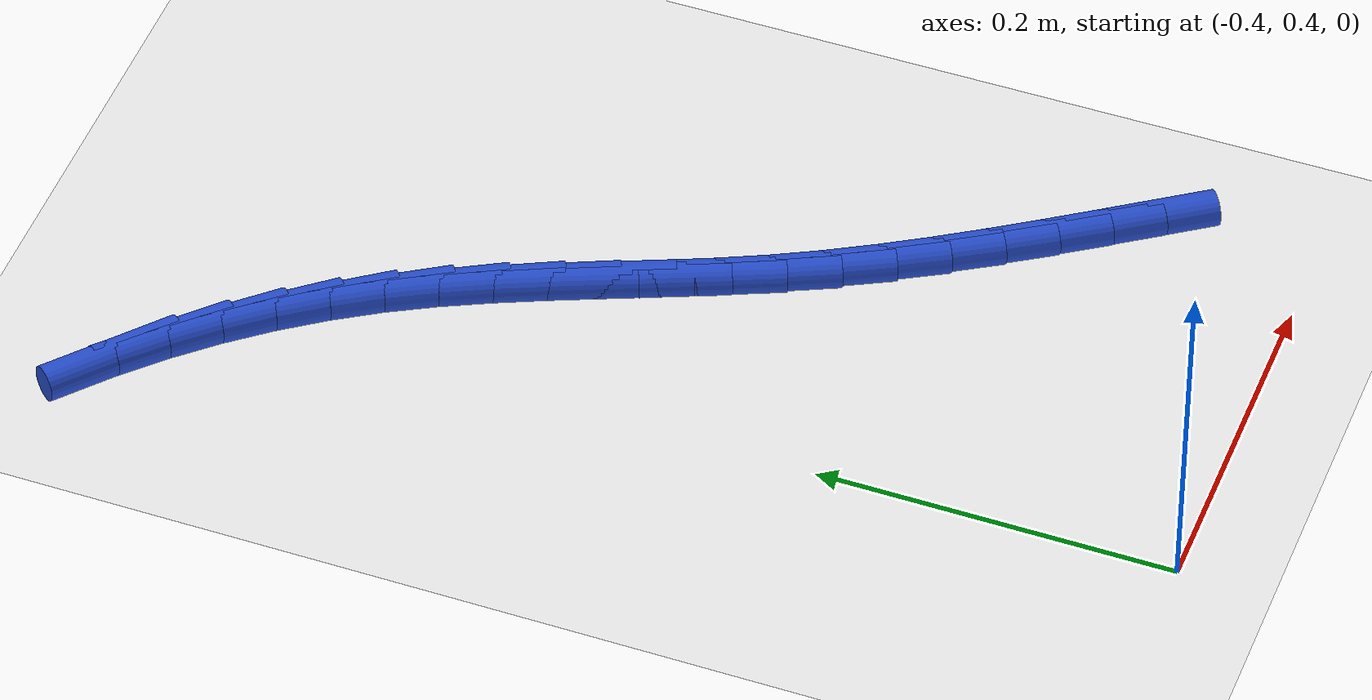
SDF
<sdf version="1.6">
 <world name="default">
  <model name="ground_plane">
   <static>1</static>
   <link name="link">
    <collision name="collision">
     <geometry><plane><normal>0 0 1</normal><size>100 100</size></plane></geometry>
     <surface><friction><ode><mu>100</mu><mu2>50</mu2></ode></friction></surface>
    </collision>
    <visual name="visual">
     <cast_shadows>0</cast_shadows>
     <geometry><plane><normal>0 0 1</normal><size>100 100</size></plane></geometry>
     <material>
      <script><uri>file://media/materials/scripts/gazebo.material</uri><name>Gazebo/WhiteGlow</name></script>
     </material>
    </visual>
   </link>
  </model>
  <model name="line">
   <link name="link_18">
    <pose>-0.167444877258756 0.49410528563416545 0.01 0 1.57 -0.9669008236131983</pose>
    <collision name="collision">
     <geometry><cylinder><radius>0.01</radius><length>0.08</length></cylinder></geometry>
    </collision>
    <visual name="visual">
     <material>
      <script><name>Gazebo/Blue</name><uri>file://media/materials/scripts/gazebo.material</uri></script>
     </material>
     <geometry><cylinder><radius>0.01</radius><length>0.08</length></cylinder></geometry>
    </visual>
   </link>
   <link name="link_19">
    <pose>-0.18450246756073044 0.5188310577345571 0.01 0 1.57 -0.9726863884717935</pose>
    <collision name="collision">
     <geometry><cylinder><radius>0.01</radius><length>0.08</length></cylinder></geometry>
    </collision>
    <visual name="visual">
     <material>
      <script><name>Gazebo/Blue</name><uri>file://media/materials/scripts/gazebo.material</uri></script>
     </material>
     <geometry><cylinder><radius>0.01</radius><length>0.08</length></cylinder></geometry>
    </visual>
   </link>
   <link name="link_20">
    <pose>-0.20141331807662105 0.5436501095480528 0.01 0 1.57 -0.984597183898682</pose>
    <collision name="collision">
     <geometry><cylinder><radius>0.01</radius><length>0.08</length></cylinder></geometry>
    </collision>
    <visual name="visual">
     <material>
      <script><name>Gazebo/Blue</name><uri>file://media/materials/scripts/gazebo.material</uri></script>
     </material>
     <geometry><cylinder><radius>0.01</radius><length>0.08</length></cylinder></geometry>
    </visual>
   </link>
   <link name="link_21">
    <pose>-0.21800440219573697 0.5686342440550504 0.01 0 1.57 -1.0026981416675862</pose>
    <collision name="collision">
     <geometry><cylinder><radius>0.01</radius><length>0.08</length></cylinder></geometry>
    </collision>
    <visual name="visual">
     <material>
      <script><name>Gazebo/Blue</name><uri>file://media/materials/scripts/gazebo.material</uri></script>
     </material>
     <geometry><cylinder><radius>0.01</radius><length>0.08</length></cylinder></geometry>
    </visual>
   </link>
   <link name="link_22">
    <pose>-0.23410269330738717 0.5938552642359478 0.01 0 1.57 -1.0270813841281645</pose>
    <collision name="collision">
     <geometry><cylinder><radius>0.01</radius><length>0.08</length></cylinder></geometry>
    </collision>
    <visual name="visual">
     <material>
      <script><name>Gazebo/Blue</name><uri>file://media/materials/scripts/gazebo.material</uri></script>
     </material>
     <geometry><cylinder><radius>0.01</radius><length>0.08</length></cylinder></geometry>
    </visual>
   </link>
   <link name="link_23">
    <pose>-0.24953516480088064 0.6193849730711432 0.01 0 1.57 -1.0578459639371918</pose>
    <collision name="collision">
     <geometry><cylinder><radius>0.01</radius><length>0.08</length></cylinder></geometry>
    </collision>
    <visual name="visual">
     <material>
      <script><name>Gazebo/Blue</name><uri>file://media/materials/scripts/gazebo.material</uri></script>
     </material>
     <geometry><cylinder><radius>0.01</radius><length>0.08</length></cylinder></geometry>
    </visual>
   </link>
   <link name="link_24">
    <pose>-0.2641287900655266 0.6452951735410347 0.01 0 1.57 -1.095064450970841</pose>
    <collision name="collision">
     <geometry><cylinder><radius>0.01</radius><length>0.08</length></cylinder></geometry>
    </collision>
    <visual name="visual">
     <material>
      <script><name>Gazebo/Blue</name><uri>file://media/materials/scripts/gazebo.material</uri></script>
     </material>
     <geometry><cylinder><radius>0.01</radius><length>0.08</length></cylinder></geometry>
    </visual>
   </link>
   <link name="link_25">
    <pose>-0.2777106649210383 0.6716576156773398 0.01 0 1.57 -1.1339365389686895</pose>
    <collision name="collision">
     <geometry><cylinder><radius>0.01</radius><length>0.08</length></cylinder></geometry>
    </collision>
    <visual name="visual">
     <material>
      <script><name>Gazebo/Blue</name><uri>file://media/materials/scripts/gazebo.material</uri></script>
     </material>
     <geometry><cylinder><radius>0.01</radius><length>0.08</length></cylinder></geometry>
    </visual>
   </link>
   <link name="link_26">
    <pose>-0.29023883915279275 0.6984874145633994 0.01 0 1.57 -1.1603927286373734</pose>
    <collision name="collision">
     <geometry><cylinder><radius>0.01</radius><length>0.08</length></cylinder></geometry>
    </collision>
    <visual name="visual">
     <material>
      <script><name>Gazebo/Blue</name><uri>file://media/materials/scripts/gazebo.material</uri></script>
     </material>
     <geometry><cylinder><radius>0.01</radius><length>0.08</length></cylinder></geometry>
    </visual>
   </link>
   <link name="link_27">
    <pose>-0.30205122987205557 0.7256354003272797 0.01 0 1.57 -1.1718510174751262</pose>
    <collision name="collision">
     <geometry><cylinder><radius>0.01</radius><length>0.08</length></cylinder></geometry>
    </collision>
    <visual name="visual">
     <material>
      <script><name>Gazebo/Blue</name><uri>file://media/materials/scripts/gazebo.material</uri></script>
     </material>
     <geometry><cylinder><radius>0.01</radius><length>0.08</length></cylinder></geometry>
    </visual>
   </link>
   <link name="link_28">
    <pose>-0.313554241404602 0.7529227837583837 0.01 0 1.57 -1.1683153209630228</pose>
    <collision name="collision">
     <geometry><cylinder><radius>0.01</radius><length>0.08</length></cylinder></geometry>
    </collision>
    <visual name="visual">
     <material>
      <script><name>Gazebo/Blue</name><uri>file://media/materials/scripts/gazebo.material</uri></script>
     </material>
     <geometry><cylinder><radius>0.01</radius><length>0.08</length></cylinder></geometry>
    </visual>
   </link>
   <link name="link_29">
    <pose>-0.32515427807620667 0.7801707756461143 0.01 0 1.57 -1.1497883213732725</pose>
    <collision name="collision">
     <geometry><cylinder><radius>0.01</radius><length>0.08</length></cylinder></geometry>
    </collision>
    <visual name="visual">
     <material>
      <script><name>Gazebo/Blue</name><uri>file://media/materials/scripts/gazebo.material</uri></script>
     </material>
     <geometry><cylinder><radius>0.01</radius><length>0.08</length></cylinder></geometry>
    </visual>
   </link>
   <link name="link_30">
    <pose>-0.3372577442126451 0.8072005867798756 0.01 0 1.57 -1.1162952735850844</pose>
    <collision name="collision">
     <geometry><cylinder><radius>0.01</radius><length>0.08</length></cylinder></geometry>
    </collision>
    <visual name="visual">
     <material>
      <script><name>Gazebo/Blue</name><uri>file://media/materials/scripts/gazebo.material</uri></script>
     </material>
     <geometry><cylinder><radius>0.01</radius><length>0.08</length></cylinder></geometry>
    </visual>
   </link>
   <link name="link_31">
    <pose>-0.35027104413969185 0.8338334279490695 0.01 0 1.57 -1.0680078343342836</pose>
    <collision name="collision">
     <geometry><cylinder><radius>0.01</radius><length>0.08</length></cylinder></geometry>
    </collision>
    <visual name="visual">
     <material>
      <script><name>Gazebo/Blue</name><uri>file://media/materials/scripts/gazebo.material</uri></script>
     </material>
     <geometry><cylinder><radius>0.01</radius><length>0.08</length></cylinder></geometry>
    </visual>
   </link>
   <link name="link_32">
    <pose>-0.3646005821831223 0.8598905099431002 0.01 0 1.57 -1.0080423370805933</pose>
    <collision name="collision">
     <geometry><cylinder><radius>0.01</radius><length>0.08</length></cylinder></geometry>
    </collision>
    <visual name="visual">
     <material>
      <script><name>Gazebo/Blue</name><uri>file://media/materials/scripts/gazebo.material</uri></script>
     </material>
     <geometry><cylinder><radius>0.01</radius><length>0.08</length></cylinder></geometry>
    </visual>
   </link>
   <link name="link_33">
    <pose>-0.38056796587997116 0.8852037142345754 0.01 0 1.57 -0.9471541938286397</pose>
    <collision name="collision">
     <geometry><cylinder><radius>0.01</radius><length>0.08</length></cylinder></geometry>
    </collision>
    <visual name="visual">
     <material>
      <script><name>Gazebo/Blue</name><uri>file://media/materials/scripts/gazebo.material</uri></script>
     </material>
     <geometry><cylinder><radius>0.01</radius><length>0.08</length></cylinder></geometry>
    </visual>
   </link>
   <link name="link_34">
    <pose>-0.3981536142375855 0.9096478568785027 0.01 0 1.57 -0.8875377673563339</pose>
    <collision name="collision">
     <geometry><cylinder><radius>0.01</radius><length>0.08</length></cylinder></geometry>
    </collision>
    <visual name="visual">
     <material>
      <script><name>Gazebo/Blue</name><uri>file://media/materials/scripts/gazebo.material</uri></script>
     </material>
     <geometry><cylinder><radius>0.01</radius><length>0.08</length></cylinder></geometry>
    </visual>
   </link>
   <link name="link_35">
    <pose>-0.417252145838474 0.9331085509089488 0.01 0 1.57 -0.828685149573534</pose>
    <collision name="collision">
     <geometry><cylinder><radius>0.01</radius><length>0.08</length></cylinder></geometry>
    </collision>
    <visual name="visual">
     <material>
      <script><name>Gazebo/Blue</name><uri>file://media/materials/scripts/gazebo.material</uri></script>
     </material>
     <geometry><cylinder><radius>0.01</radius><length>0.08</length></cylinder></geometry>
    </visual>
   </link>
   <link name="link_36">
    <pose>-0.4377581792645012 0.9554714093600614 0.01 0 1.57 -0.7700935751304727</pose>
    <collision name="collision">
     <geometry><cylinder><radius>0.01</radius><length>0.08</length></cylinder></geometry>
    </collision>
    <visual name="visual">
     <material>
      <script><name>Gazebo/Blue</name><uri>file://media/materials/scripts/gazebo.material</uri></script>
     </material>
     <geometry><cylinder><radius>0.01</radius><length>0.08</length></cylinder></geometry>
    </visual>
   </link>
   <link name="link_37">
    <pose>-0.4595663330975323 0.976622045265988 0.01 0 1.57 -0.7112651403275346</pose>
    <collision name="collision">
     <geometry><cylinder><radius>0.01</radius><length>0.08</length></cylinder></geometry>
    </collision>
    <visual name="visual">
     <material>
      <script><name>Gazebo/Blue</name><uri>file://media/materials/scripts/gazebo.material</uri></script>
     </material>
     <geometry><cylinder><radius>0.01</radius><length>0.08</length></cylinder></geometry>
    </visual>
   </link>
  </model>
 </world>
</sdf>
